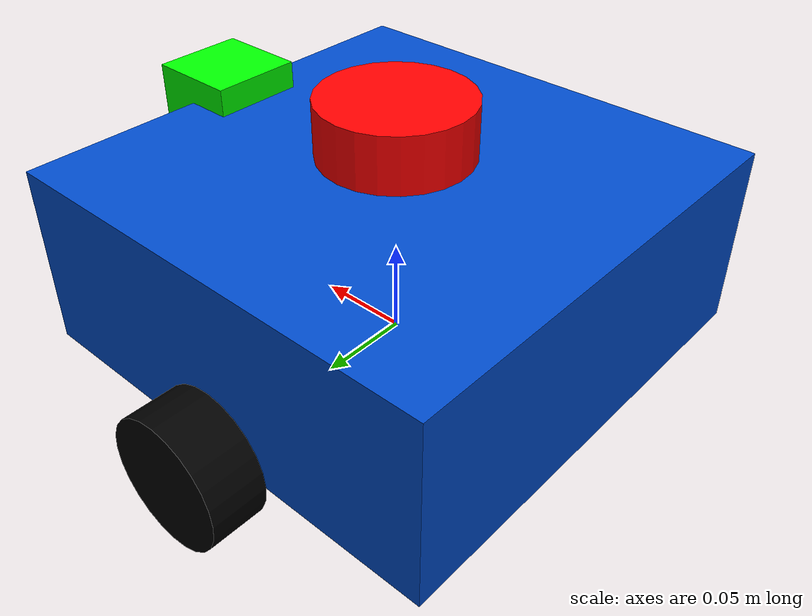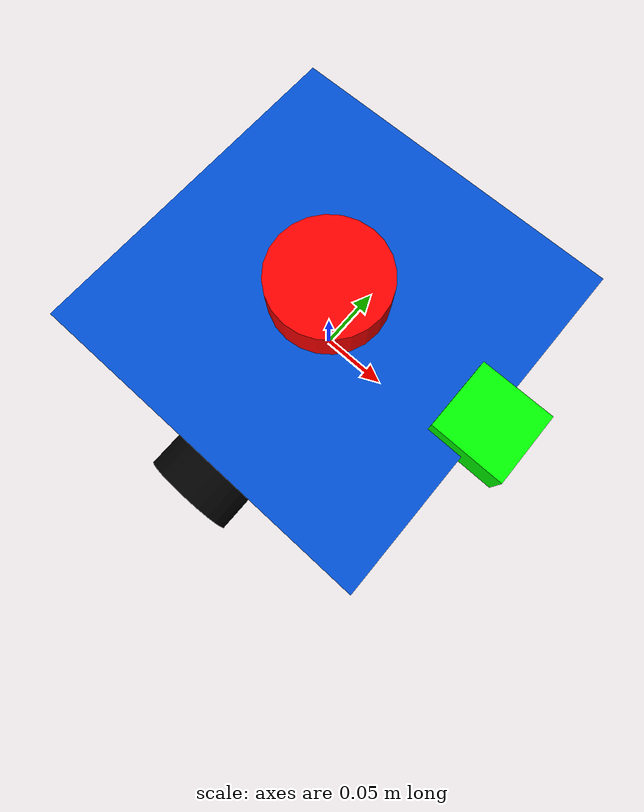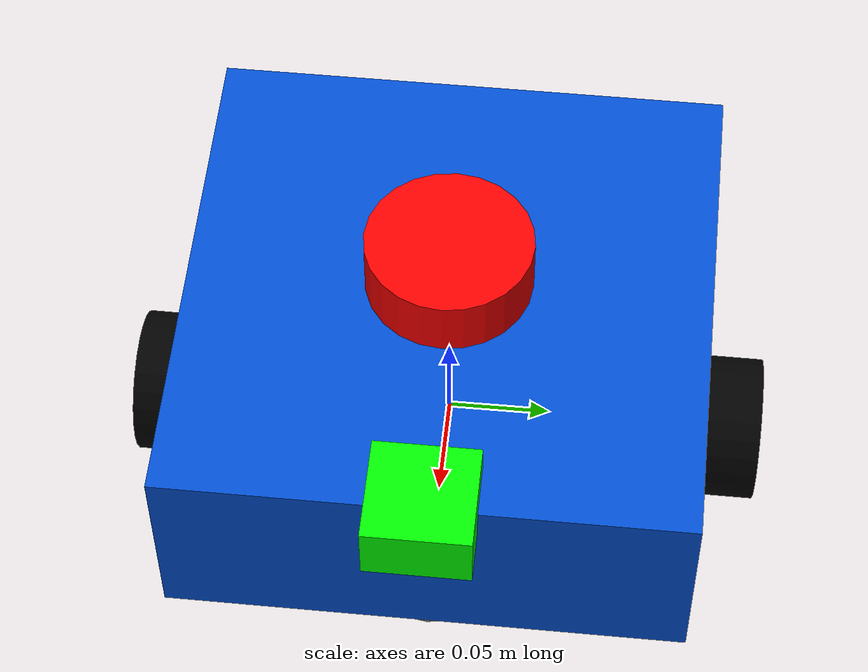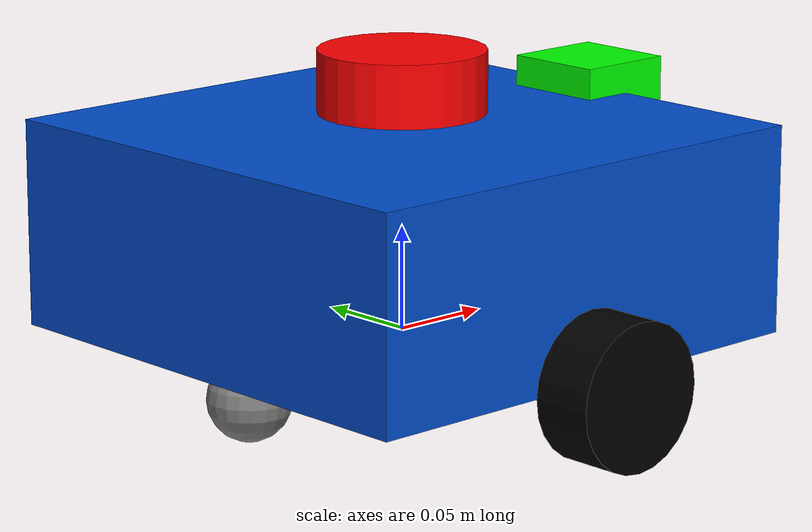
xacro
<?xml version="1.0"?>
<robot xmlns:xacro="http://www.ros.org/wiki/xacro" name="diff_robot">

  <!-- ======= Parameters ======= -->
  <xacro:property name="robot_length" value="0.25"/>
  <xacro:property name="robot_width"  value="0.25"/>
  <xacro:property name="robot_height" value="0.10"/>

  <xacro:property name="wheel_radius" value="0.035"/>
  <xacro:property name="wheel_width"  value="0.03"/>

  <xacro:property name="caster_radius" value="0.02"/>

  <!-- ======= Base Link ======= -->
  <link name="base_link">
    <visual>
      <geometry>
        <box size="${robot_length} ${robot_width} ${robot_height}"/>
      </geometry>
      <origin xyz="0 0 ${robot_height/2}" rpy="0 0 0"/>
      <material name="blue">
        <color rgba="0.0 0.3 0.8 1.0"/>
      </material>
    </visual>

    <collision>
      <geometry>
        <box size="${robot_length} ${robot_width} ${robot_height}"/>
      </geometry>
      <origin xyz="0 0 ${robot_height/2}" rpy="0 0 0"/>
    </collision>

    <inertial>
      <mass value="4"/>
      <origin xyz="0 0 ${robot_height/2}"/>
      <inertia
          ixx="0.02" ixy="0.0"  ixz="0.0"
          iyy="0.04" iyz="0.0"
          izz="0.05"/>
    </inertial>
  </link>

  <!-- ============================
       LEFT WHEEL
  ============================= -->
  <link name="left_wheel_link">
    <visual>
      <geometry>
        <cylinder length="${wheel_width}" radius="${wheel_radius}"/>
      </geometry>
      <origin xyz="0 ${wheel_width/2} 0" rpy="1.5707 0 0"/>
      <material name="black">
        <color rgba="0 0 0 1"/>
      </material>
    </visual>

    <collision>
      <geometry>
        <cylinder length="${wheel_width}" radius="${wheel_radius}"/>
      </geometry>
      <origin xyz="0 ${wheel_width/2} 0" rpy="1.5707 0 0"/>
    </collision>

    <inertial>
      <mass value="0.2"/>
      <inertia ixx="0.001" ixy="0" ixz="0" iyy="0.001" iyz="0" izz="0.001"/>
    </inertial>
  </link>

  <joint name="left_wheel_joint" type="continuous">
    <parent link="base_link"/>
    <child link="left_wheel_link"/>
    <origin xyz="0 ${robot_width/2} 0" rpy="0 0 0"/>
    <axis xyz="0 1 0"/>
  </joint>

  <!-- ============================
       RIGHT WHEEL
  ============================= -->
  <link name="right_wheel_link">
    <visual>
      <geometry>
        <cylinder length="${wheel_width}" radius="${wheel_radius}"/>
      </geometry>
      <origin xyz="0 -${wheel_width/2} 0" rpy="1.5707 0 0"/>
      <material name="black">
        <color rgba="0 0 0 1"/>
      </material>
    </visual>

    <collision>
      <geometry>
        <cylinder length="${wheel_width}" radius="${wheel_radius}"/>
      </geometry>
      <origin xyz="0 -${wheel_width/2} 0" rpy="1.5707 0 0"/>
    </collision>

    <inertial>
      <mass value="0.2"/>
      <inertia ixx="0.001" ixy="0" ixz="0" iyy="0.001" iyz="0" izz="0.001"/>
    </inertial>
  </link>

  <joint name="right_wheel_joint" type="continuous">
    <parent link="base_link"/>
    <child link="right_wheel_link"/>
    <origin xyz="0 -${robot_width/2} 0" rpy="0 0 0"/>
    <axis xyz="0 1 0"/>
  </joint>

  <!-- ============================
       FRONT CASTER
  ============================= -->
  <link name="front_caster_link">
    <visual>
      <geometry>
        <sphere radius="${caster_radius}"/>
      </geometry>
      <origin xyz="0 0 0" />
      <material name="grey">
        <color rgba="0.5 0.5 0.5 1"/>
      </material>
    </visual>

    <collision>
      <geometry><sphere radius="${caster_radius}"/></geometry>
      <origin xyz="0 0 0"/>
    </collision>
  </link>

  <joint name="front_caster_joint" type="fixed">
    <parent link="base_link"/>
    <child link="front_caster_link"/>
    <origin xyz="${robot_length/2 - 0.03} 0 -0.015"/>
  </joint>

  <!-- ============================
       REAR CASTER
  ============================= -->
  <link name="rear_caster_link">
    <visual>
      <geometry>
        <sphere radius="${caster_radius}"/>
      </geometry>
      <origin xyz="-0 0 0" />
      <material name="grey">
        <color rgba="0.5 0.5 0.5 1"/>
      </material>
    </visual>

    <collision>
      <geometry><sphere radius="${caster_radius}"/></geometry>
      <origin xyz="-0 0 0"/>
    </collision>
  </link>

  <joint name="rear_caster_joint" type="fixed">
    <parent link="base_link"/>
    <child link="rear_caster_link"/>
    <origin xyz="-${robot_length/2 - 0.03} 0 -0.015"/>
  </joint>

  <!-- ============================
       LiDAR
  ============================= -->
  <link name="laser_frame">
    <visual>
      <geometry>
        <cylinder length="0.03" radius="0.04"/>
      </geometry>
      <origin xyz="0 0 ${robot_height + 0.02}" rpy="0 0 0"/>
      <material name="red">
        <color rgba="1 0 0 1"/>
      </material>
    </visual>
  </link>

  <joint name="lidar_joint" type="fixed">
    <parent link="base_link"/>
    <child link="laser_frame"/>
    <origin xyz="0 0 0" rpy="0 0 0"/>
  </joint>

  <!-- ============================
       CAMERA (đã đổi tên)
  ============================= -->
  <link name="camera_front_link">
    <visual>
      <geometry>
        <box size="0.05 0.05 0.03"/>
      </geometry>
      <origin xyz="0 0 0" />
      <material name="green">
        <color rgba="0 1 0 1"/>
      </material>
    </visual>
  </link>

  <joint name="camera_front_joint" type="fixed">
    <parent link="base_link"/>
    <child link="camera_front_link"/>
    <origin xyz="${robot_length/2} 0 ${robot_height}"/>
  </joint>

</robot>
